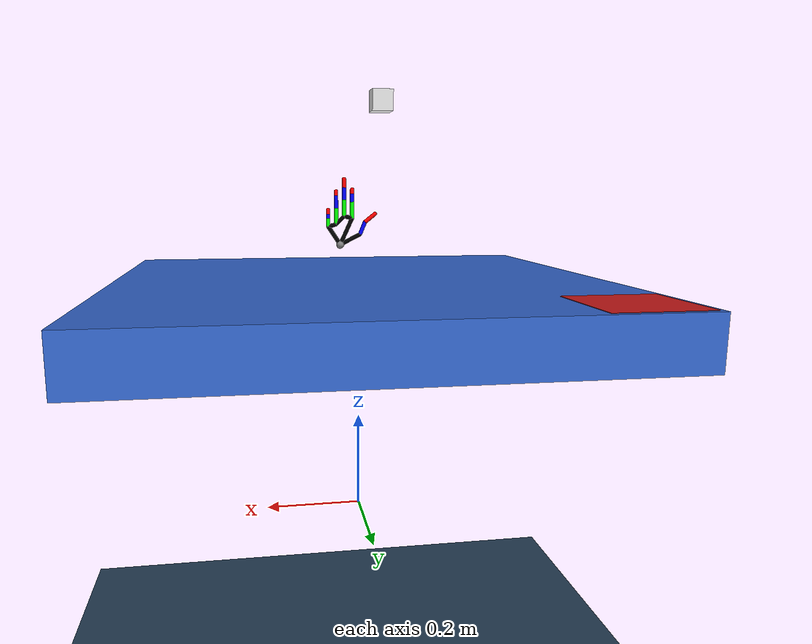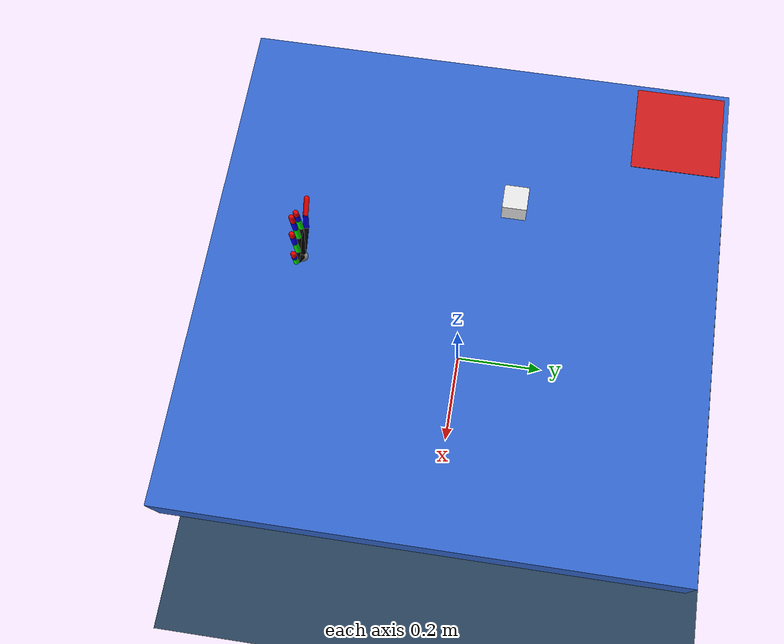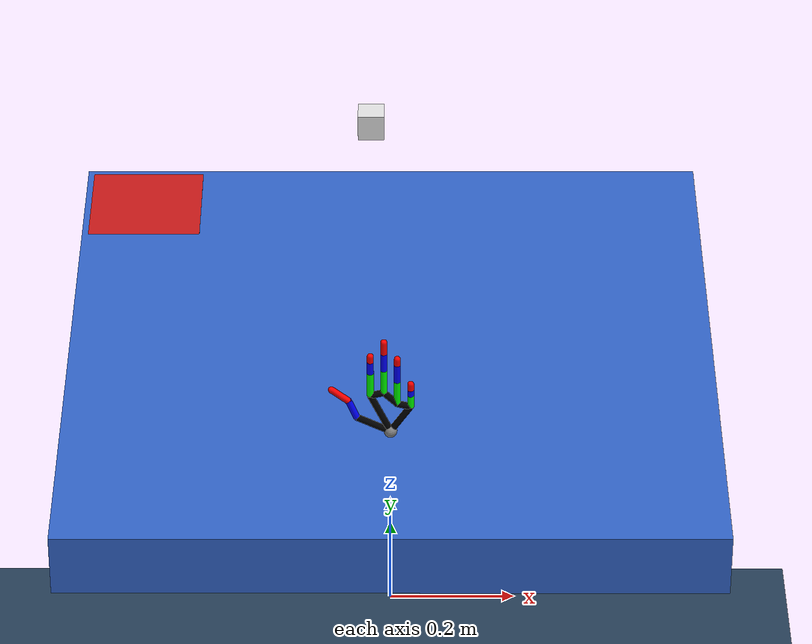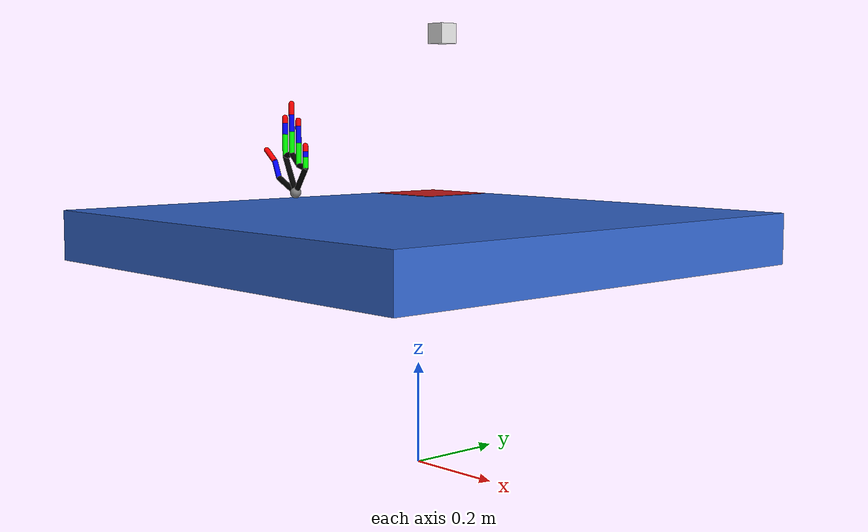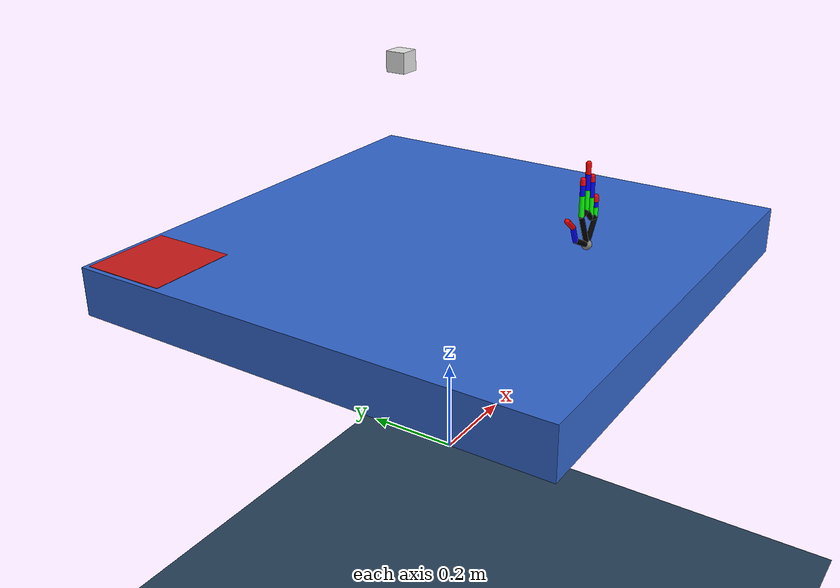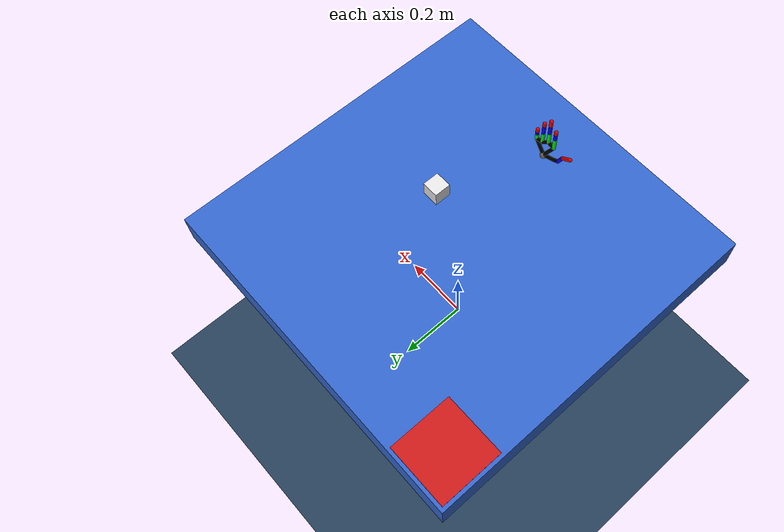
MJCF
<mujoco>
  <option timestep="0.002" cone="elliptic" iterations="80" ls_iterations="50"/>

  <contact>
    <pair geom1="cube_geom" geom2="table_top"
          condim="6" friction="3.5 0.18 0.10"
          solref="0.0007 1" solimp="0.99 0.9997 0.0005"/>
    <!-- Hand tips ↔ cube only (friction values updated) -->
    <pair geom1="thumb_ip"  geom2="cube_geom"
          condim="6" friction="5.0 0.35 0.18"
          solref="0.0007 1" solimp="0.990 0.9997 0.0005"/>
    <pair geom1="index_dip"  geom2="cube_geom"
          condim="6" friction="5.0 0.35 0.18"
          solref="0.0007 1" solimp="0.990 0.9997 0.0005"/>
    <pair geom1="middle_dip" geom2="cube_geom"
          condim="6" friction="5.0 0.35 0.18"
          solref="0.0007 1" solimp="0.990 0.9997 0.0005"/>
    <pair geom1="ring_dip"   geom2="cube_geom"
          condim="6" friction="5.0 0.35 0.18"
          solref="0.0007 1" solimp="0.990 0.9997 0.0005"/>
    <pair geom1="pinky_dip"  geom2="cube_geom"
          condim="6" friction="5.0 0.35 0.18"
          solref="0.0007 1" solimp="0.990 0.9997 0.0005"/>
  </contact>

  <asset>
    <texture name="grid" type="2d" builtin="checker" rgb1=".1 .2 .3"
             rgb2=".2 .3 .4" width="300" height="300" mark="none"/>
    <material name="grid" texture="grid" texrepeat="1 1"
              texuniform="true" reflectance=".2"/>
  </asset>

  <default>
    <!-- More damping in joints so your hand doesn't punch the ball -->
    <joint damping="2.0"/>
    <!-- Softer, better-damped contacts + small margin for early, gentle contact -->
    <geom solref="0.005 1" solimp="0.95 0.99 0.002"
          friction="1.20 0.01 0.002" margin="0.002"/>
  </default>

  <worldbody>
    <light name="light" pos="0 0 2"/>
    <geom name="floor" type="plane" pos="0 0 -.5" size="4 4 .1" material="grid"/>
    <camera name="fixed" pos="0 -2 1" xyaxes="1 0 0 0 1 2"/>

    <!-- Table -->
    <body name="table" pos="0 0 0">
      <geom name="table_top" type="box" size="0.5 0.5 0.05" pos="0 0 0.45" rgba="0.2 0.4 0.8 1"
            condim="6" friction="3.0 0.12 0.06" solref="0.003 1" solimp="0.97 0.999 0.001"
            contype="1" conaffinity="1"/>
    </body>

    <!-- hand Gripper -->
    <body name="gripper_base" pos="0.0 -0.3 0.55">
      <joint name="gripper_x" type="slide" axis="1 0 0" range="-1 1" damping="5"/>
      <joint name="gripper_y" type="slide" axis="0 1 0" range="-1 1" damping="5"/>
      <joint name="gripper_z" type="slide" axis="0 0 1" range="-1 1" damping="5"/>
      <joint name="wrist_flex_pitch" type="hinge" axis="-1 0 0" range="-1 2" damping="1.0"/>
      <joint name="wrist_abduction_yaw" type="hinge" axis="0 1 0" range="-1 1" damping="1.0"/>
      <joint name="wrist_roll" type="hinge" axis="0 0 1" range="-1 1" damping="1.0"/>
      <geom type="sphere" size="0.01" mass="0.01" contype="0" conaffinity="0" rgba="0.5 0.5 0.5 1"/>

      <geom name="palm_connector_thumb" type="capsule" fromto="0 0 0  -0.05 0 0.025" size="0.005" rgba="0 0 0 1" mass="0.01"/>
      <geom name="palm_connector_index" type="capsule" fromto="0 0 0  -0.03 0 0.065" size="0.005" rgba="0 0 0 1" mass="0.01"/>
      <geom name="index_to_middle" type="capsule" fromto="-0.03 0 0.065  -0.01 0 0.07" size="0.005" rgba="0 0 0 1" mass="0.01"/>
      <geom name="middle_to_ring" type="capsule" fromto="-0.01 0 0.07  0.01 0 0.05" size="0.005" rgba="0 0 0 1" mass="0.01"/>
      <geom name="ring_to_pinky" type="capsule" fromto="0.01 0 0.05  0.03 0 0.045" size="0.005" rgba="0 0 0 1" mass="0.01"/>
      <geom name="palm_connector_pinky" type="capsule" fromto="0 0 0  0.03 0 0.045" size="0.005" rgba="0 0 0 1" mass="0.01"/>

      <!-- Thumb Finger -->
      <body name="thumb_mcp" pos="-0.05 0 0.025">
        <joint name="thumb_base" type="hinge" axis="0 -1 0" range="0 2.0944" damping="0.1"/>
        <joint name="thumb_mcp" type="hinge" axis="-1 0 0" range="0 2.0944" damping="0.1"/>
        <joint name="thumb_roll" type="hinge" axis="0 0 -1" range="0 2.0944" damping="0.1"/>

        <geom type="capsule" size="0.005 0.03" fromto="0 0 0 -0.0125 0 0.03"
              mass="0.01" rgba="0 0 1 1"
              condim="6" friction="1.8 0.02 0.002"/>
        <body name="thumb_ip" pos="-0.0125 0 0.03">
          <joint name="thumb_ip" type="hinge" axis="0 1 0" range="0 2.0944" damping="0.1"/>
          <!-- UPDATED friction on fingertip geom -->
          <geom name="thumb_ip" type="capsule" size="0.005 0.03" fromto="0 0 0  -0.025 0 0.02"
                mass="0.01" rgba="1 0 0 1"
                condim="6" friction="3.0 0.12 0.06"
                solref="0.003 1" solimp="0.97 0.999 0.001"/>
        </body>
      </body>

      <!-- Index Finger -->
      <body name="index_base" pos="-0.03 0 0.065">
        <joint name="index_mcp" type="hinge" axis="-1 0 0" range="0 2.0944" damping="2.0"/>
        <joint name="index_abd" type="hinge" axis="0 -1 0" range="0 2.0944" damping="2.0"/>
        <geom type="capsule" fromto="0 0 0 0 0 0.04" size="0.005"
              mass="0.01" rgba="0 1 0 1"
              condim="6" friction="2.2 0.05 0.01"/>
        <body name="index_pip" pos="0 0 0.04">
          <joint name="index_pip" type="hinge" axis="-1 0 0" range="0 2.0944" damping="1.0"/>
          <geom type="capsule" fromto="0 0 0 0 0 0.02" size="0.005"
                mass="0.01" rgba="0 0 1 1"
                condim="6" friction="2.2 0.05 0.01"/>
          <body name="index_dip" pos="0 0 0.02">
            <joint name="index_dip" type="hinge" axis="-1 0 0" range="0 2.0944" damping="1.0"/>
            <!-- UPDATED friction on fingertip geom -->
            <geom name="index_dip" type="capsule" fromto="0 0 0 0 0 0.01" size="0.005"
                  mass="0.01" rgba="1 0 0 1"
                  condim="6" friction="3.0 0.12 0.06"
                  solref="0.003 1" solimp="0.97 0.999 0.001"/>
          </body>
        </body>
      </body>

      <!-- Middle Finger -->
      <body name="middle_base" pos="-0.01 0 0.07">
        <joint name="middle_mcp" type="hinge" axis="-1 0 0" range="0 2.0944" damping="2.0"/>
        <geom type="capsule" fromto="0 0 0 0 0 0.04" size="0.005"
              rgba="0 1 0 1" mass="0.01"
              condim="6" friction="2.2 0.05 0.01"/>
        <body name="middle_pip" pos="0 0 0.04">
          <joint name="middle_pip" type="hinge" axis="-1 0 0" range="0 2.0944" damping="1.0"/>
          <geom type="capsule" fromto="0 0 0 0 0 0.03" size="0.005"
                rgba="0 0 1 1" mass="0.01"
                condim="6" friction="2.2 0.05 0.01"/>
          <body name="middle_dip" pos="0 0 0.03">
            <joint name="middle_dip" type="hinge" axis="-1 0 0" range="0 2.0944" damping="1.0"/>
            <!-- UPDATED friction on fingertip geom -->
            <geom name="middle_dip" type="capsule" fromto="0 0 0 0 0 0.02" size="0.005"
                  rgba="1 0 0 1" mass="0.01"
                  condim="6" friction="3.0 0.12 0.06"
                  solref="0.003 1" solimp="0.97 0.999 0.001"/>
          </body>
        </body>
      </body>

      <!-- Ring Finger -->
      <body name="ring_base" pos="0.01 0 0.05">
        <joint name="ring_mcp" type="hinge" axis="-1 0 0" range="0 2.0944" damping="2.0"/>
        <joint name="ring_abd" type="hinge" axis="0 1 0" range="0 2.0944" damping="2.0"/>
        <geom type="capsule" fromto="0 0 0 0 0 0.04" size="0.005"
              rgba="0 1 0 1" mass="0.01"
              condim="6" friction="2.2 0.05 0.01"/>
        <body name="ring_pip" pos="0 0 0.04">
          <joint name="ring_pip" type="hinge" axis="-1 0 0" range="0 2.0944" damping="1.0"/>
          <geom type="capsule" fromto="0 0 0 0 0 0.03" size="0.005"
                rgba="0 0 1 1" mass="0.01"
                condim="6" friction="2.2 0.05 0.01"/>
          <body name="ring_dip" pos="0 0 0.03">
            <joint name="ring_dip" type="hinge" axis="-1 0 0" range="0 2.0944" damping="1.0"/>
            <!-- UPDATED friction on fingertip geom -->
            <geom name="ring_dip" type="capsule" fromto="0 0 0 0 0 0.01" size="0.005"
                  rgba="1 0 0 1" mass="0.01"
                  condim="6" friction="3.0 0.12 0.06"
                  solref="0.003 1" solimp="0.97 0.999 0.001"/>
          </body>
        </body>
      </body>

      <!-- Pinky Finger -->
      <body name="pinky_base" pos="0.03 0 0.045">
        <joint name="pinky_mcp" type="hinge" axis="-1 0 0" range="0 2.0944" damping="2.0"/>
        <joint name="pinky_abd" type="hinge" axis="0 1 0" range="0 2.0944" damping="2.0"/>
        <geom type="capsule" fromto="0 0 0 0 0 0.02" size="0.005"
              rgba="0 1 0 1" mass="0.01"
              condim="6" friction="2.2 0.05 0.01"/>
        <body name="pinky_pip" pos="0 0 0.02">
          <joint name="pinky_pip" type="hinge" axis="-1 0 0" range="0 2.0944" damping="1.0"/>
          <geom type="capsule" fromto="0 0 0 0 0 0.01" size="0.005"
                rgba="0 0 1 1" mass="0.01"
                condim="6" friction="2.2 0.05 0.01"/>
          <body name="pinky_dip" pos="0 0 0.01">
            <joint name="pinky_dip" type="hinge" axis="-1 0 0" range="0 2.0944" damping="1.0"/>
            <!-- UPDATED friction on fingertip geom -->
            <geom name="pinky_dip" type="capsule" fromto="0 0 0 0 0 0.01" size="0.005"
                  rgba="1 0 0 1" mass="0.01"
                  condim="6" friction="3.0 0.12 0.06"
                  solref="0.003 1" solimp="0.97 0.999 0.001"/>
          </body>
        </body>
      </body>
    </body>

    <!-- Cube to pick up -->
    <body name="cube" pos="-0.03 0.09 0.85">
      <joint type="free" damping="1.0"/>
      <!-- UPDATED friction on cube geom -->
      <geom name="cube_geom" type="box" size="0.020 0.020 0.020" density="1000"
            rgba="0.9 0.9 0.9 1"
            condim="6" friction="20 2 0.2" margin="0.002"
            solref="0.001 1" solimp="0.985 0.9995 0.0006"
            contype="1" conaffinity="1"/>
    </body>

    <!-- Red paper target area -->
    <body name="target_paper" pos="-0.4 0.4 0.5">
      <geom name="target_geom" type="box" size="0.09 0.09 0.001" density="0"
            rgba="0.8 0.1 0.1 1" contype="0" conaffinity="0"/>
    </body>

  </worldbody>

  <actuator>
    <!-- IMU / base -->
    <position name="gripper_x_act" joint="gripper_x" ctrlrange="-1 1" kp="150"/>
    <position name="gripper_y_act" joint="gripper_y" ctrlrange="-1 1" kp="50"/>
    <position name="gripper_z_act" joint="gripper_z" ctrlrange="-1 1" kp="150"/>

    <position name="wrist_flex_pitch_act" joint="wrist_flex_pitch" ctrlrange="-1 2" kp="15"/>
    <position name="wrist_abduction_yaw_act" joint="wrist_abduction_yaw" ctrlrange="-1 1" kp="15"/>
    <position name="wrist_roll_act" joint="wrist_roll" ctrlrange="-1 1" kp="15"/>

    <position name="thumb_base_act" joint="thumb_base" ctrlrange="0 2" kp="30"/>
    <position name="thumb_roll_act" joint="thumb_roll" ctrlrange="0 2" kp="30"/>
    <position name="thumb_mcp_act" joint="thumb_mcp" ctrlrange="0 2" kp="30"/>
    <position name="thumb_ip_act" joint="thumb_ip" ctrlrange="0 2" kp="30"/>

    <position name="index_mcp_act" joint="index_mcp" ctrlrange="0 2" kp="30"/>
    <position name="index_abd_act" joint="index_abd" ctrlrange="0 2" kp="30"/>
    <position name="index_pip_act" joint="index_pip" ctrlrange="0 2" kp="30"/>
    <position name="index_dip_act" joint="index_dip" ctrlrange="0 2" kp="30"/>

    <position name="middle_mcp_act" joint="middle_mcp" ctrlrange="0 2" kp="30"/>
    <position name="middle_pip_act" joint="middle_pip" ctrlrange="0 2" kp="30"/>
    <position name="middle_dip_act" joint="middle_dip" ctrlrange="0 2" kp="30"/>

    <position name="ring_mcp_act" joint="ring_mcp" ctrlrange="0 2" kp="30"/>
    <position name="ring_abd_act" joint="ring_abd" ctrlrange="0 2" kp="30"/>
    <position name="ring_pip_act" joint="ring_pip" ctrlrange="0 2" kp="30"/>
    <position name="ring_dip_act" joint="ring_dip" ctrlrange="0 2" kp="30"/>

    <position name="pinky_mcp_act" joint="pinky_mcp" ctrlrange="0 2" kp="30"/>
    <position name="pinky_abd_act" joint="pinky_abd" ctrlrange="0 2" kp="30"/>
    <position name="pinky_pip_act" joint="pinky_pip" ctrlrange="0 2" kp="30"/>
    <position name="pinky_dip_act" joint="pinky_dip" ctrlrange="0 2" kp="30"/>
  </actuator>
</mujoco>
